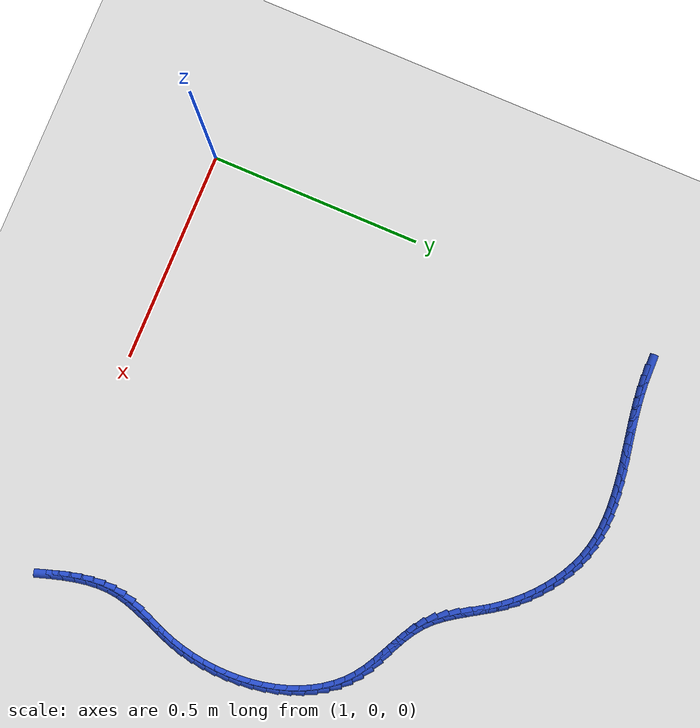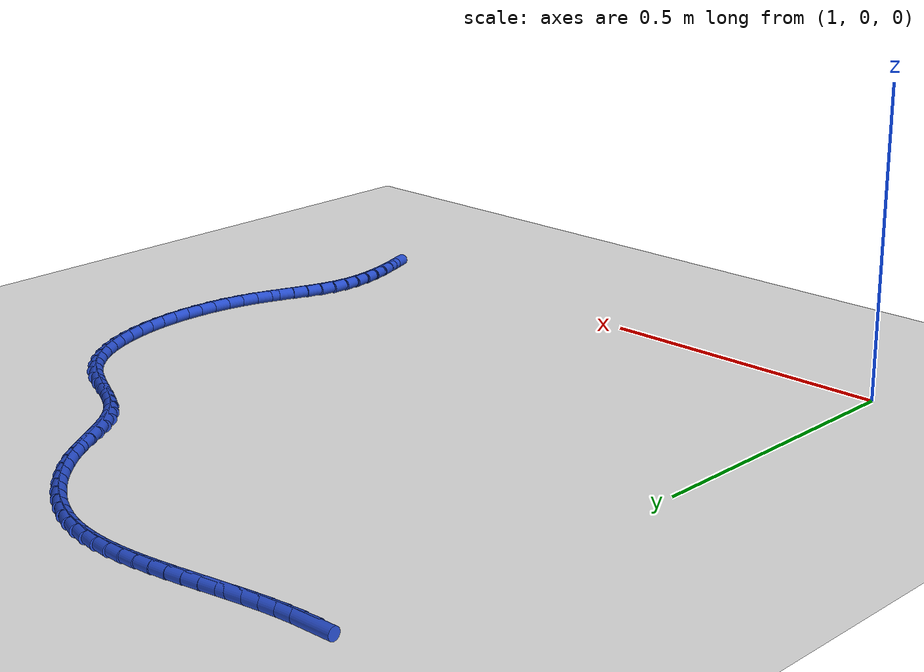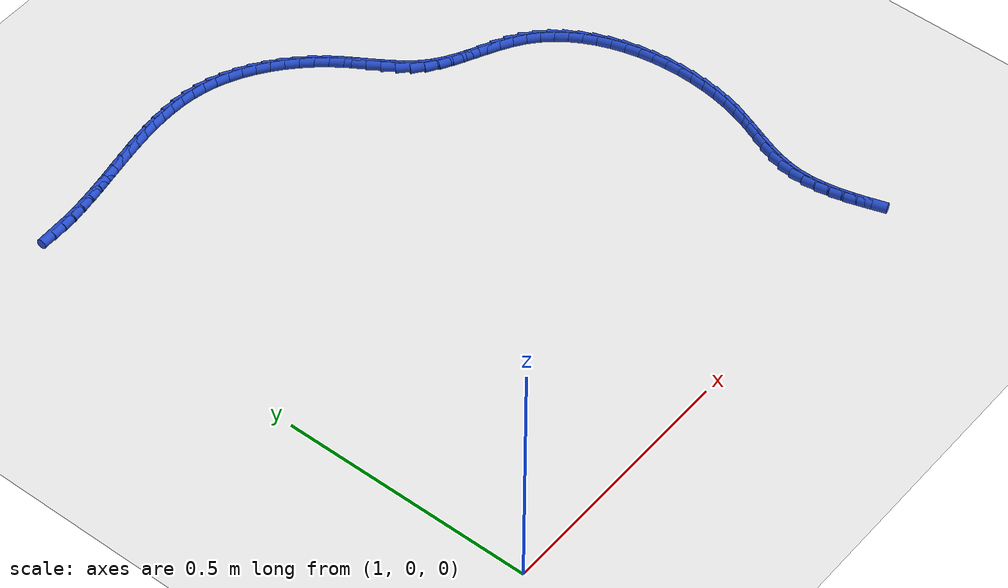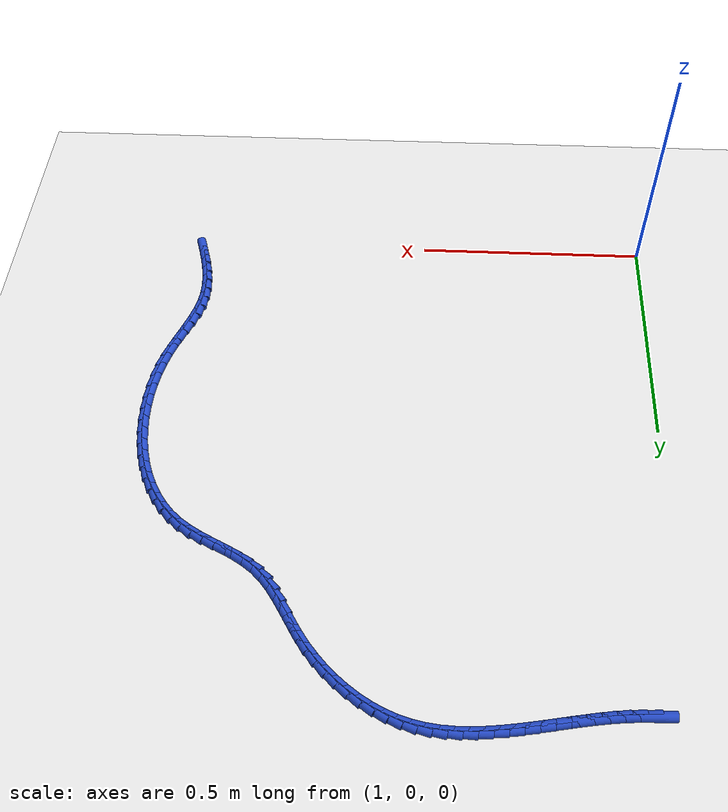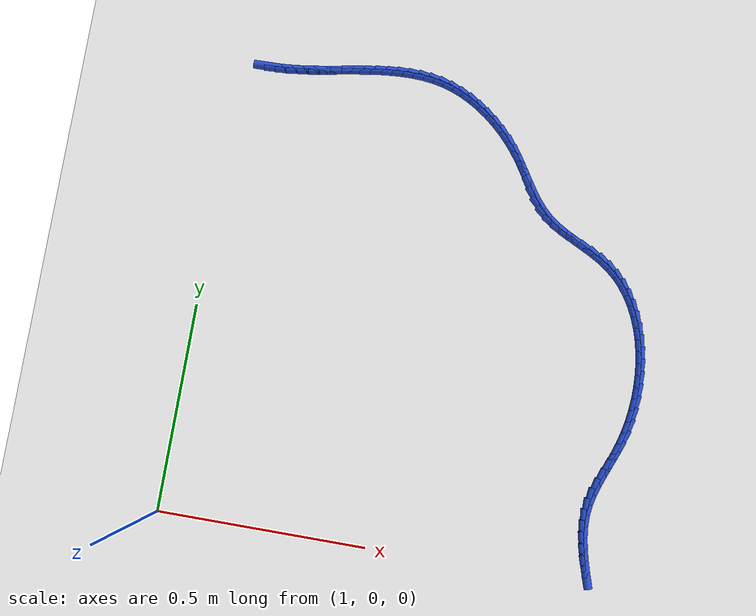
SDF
<sdf version="1.6">
 <world name="default">
  <model name="ground_plane">
   <static>1</static>
   <link name="link">
    <collision name="collision">
     <geometry><plane><normal>0 0 1</normal><size>100 100</size></plane></geometry>
     <surface><friction><ode><mu>100</mu><mu2>50</mu2></ode></friction></surface>
    </collision>
    <visual name="visual">
     <cast_shadows>0</cast_shadows>
     <geometry><plane><normal>0 0 1</normal><size>100 100</size></plane></geometry>
     <material>
      <script><uri>file://media/materials/scripts/gazebo.material</uri><name>Gazebo/WhiteGlow</name></script>
     </material>
    </visual>
   </link>
  </model>
  <model name="line">
   <link name="link_69">
    <pose>1.0704714405237863 1.1025574847790947 0.01 0 1.57 0.026596696570581793</pose>
    <collision name="collision">
     <geometry><cylinder><radius>0.01</radius><length>0.08</length></cylinder></geometry>
    </collision>
    <visual name="visual">
     <material>
      <script><name>Gazebo/Blue</name><uri>file://media/materials/scripts/gazebo.material</uri></script>
     </material>
     <geometry><cylinder><radius>0.01</radius><length>0.08</length></cylinder></geometry>
    </visual>
   </link>
   <link name="link_70">
    <pose>1.0965885917270375 1.1032522785613925 0.01 0 1.57 0.07290799182768395</pose>
    <collision name="collision">
     <geometry><cylinder><radius>0.01</radius><length>0.08</length></cylinder></geometry>
    </collision>
    <visual name="visual">
     <material>
      <script><name>Gazebo/Blue</name><uri>file://media/materials/scripts/gazebo.material</uri></script>
     </material>
     <geometry><cylinder><radius>0.01</radius><length>0.08</length></cylinder></geometry>
    </visual>
   </link>
   <link name="link_71">
    <pose>1.1229318638950734 1.1051763239781274 0.01 0 1.57 0.11167765067724277</pose>
    <collision name="collision">
     <geometry><cylinder><radius>0.01</radius><length>0.08</length></cylinder></geometry>
    </collision>
    <visual name="visual">
     <material>
      <script><name>Gazebo/Blue</name><uri>file://media/materials/scripts/gazebo.material</uri></script>
     </material>
     <geometry><cylinder><radius>0.01</radius><length>0.08</length></cylinder></geometry>
    </visual>
   </link>
   <link name="link_72">
    <pose>1.1494803990061393 1.1081535896962393 0.01 0 1.57 0.14099805214555697</pose>
    <collision name="collision">
     <geometry><cylinder><radius>0.01</radius><length>0.08</length></cylinder></geometry>
    </collision>
    <visual name="visual">
     <material>
      <script><name>Gazebo/Blue</name><uri>file://media/materials/scripts/gazebo.material</uri></script>
     </material>
     <geometry><cylinder><radius>0.01</radius><length>0.08</length></cylinder></geometry>
    </visual>
   </link>
   <link name="link_73">
    <pose>1.176190200335139 1.1119447765186792 0.01 0 1.57 0.1613246762072731</pose>
    <collision name="collision">
     <geometry><cylinder><radius>0.01</radius><length>0.08</length></cylinder></geometry>
    </collision>
    <visual name="visual">
     <material>
      <script><name>Gazebo/Blue</name><uri>file://media/materials/scripts/gazebo.material</uri></script>
     </material>
     <geometry><cylinder><radius>0.01</radius><length>0.08</length></cylinder></geometry>
    </visual>
   </link>
   <link name="link_74">
    <pose>1.2030172711567653 1.1163105852478228 0.01 0 1.57 0.1730137766827658</pose>
    <collision name="collision">
     <geometry><cylinder><radius>0.01</radius><length>0.08</length></cylinder></geometry>
    </collision>
    <visual name="visual">
     <material>
      <script><name>Gazebo/Blue</name><uri>file://media/materials/scripts/gazebo.material</uri></script>
     </material>
     <geometry><cylinder><radius>0.01</radius><length>0.08</length></cylinder></geometry>
    </visual>
   </link>
   <link name="link_75">
    <pose>1.2299176147457112 1.121011716686046 0.01 0 1.57 0.17628757949826826</pose>
    <collision name="collision">
     <geometry><cylinder><radius>0.01</radius><length>0.08</length></cylinder></geometry>
    </collision>
    <visual name="visual">
     <material>
      <script><name>Gazebo/Blue</name><uri>file://media/materials/scripts/gazebo.material</uri></script>
     </material>
     <geometry><cylinder><radius>0.01</radius><length>0.08</length></cylinder></geometry>
    </visual>
   </link>
   <link name="link_76">
    <pose>1.25684723437667 1.1258088716357249 0.01 0 1.57 0.17121792255488602</pose>
    <collision name="collision">
     <geometry><cylinder><radius>0.01</radius><length>0.08</length></cylinder></geometry>
    </collision>
    <visual name="visual">
     <material>
      <script><name>Gazebo/Blue</name><uri>file://media/materials/scripts/gazebo.material</uri></script>
     </material>
     <geometry><cylinder><radius>0.01</radius><length>0.08</length></cylinder></geometry>
    </visual>
   </link>
   <link name="link_77">
    <pose>1.2837621333243348 1.1304627508992353 0.01 0 1.57 0.15772261726100056</pose>
    <collision name="collision">
     <geometry><cylinder><radius>0.01</radius><length>0.08</length></cylinder></geometry>
    </collision>
    <visual name="visual">
     <material>
      <script><name>Gazebo/Blue</name><uri>file://media/materials/scripts/gazebo.material</uri></script>
     </material>
     <geometry><cylinder><radius>0.01</radius><length>0.08</length></cylinder></geometry>
    </visual>
   </link>
   <link name="link_78">
    <pose>1.3106183148633992 1.1347340552789538 0.01 0 1.57 0.1355728570010186</pose>
    <collision name="collision">
     <geometry><cylinder><radius>0.01</radius><length>0.08</length></cylinder></geometry>
    </collision>
    <visual name="visual">
     <material>
      <script><name>Gazebo/Blue</name><uri>file://media/materials/scripts/gazebo.material</uri></script>
     </material>
     <geometry><cylinder><radius>0.01</radius><length>0.08</length></cylinder></geometry>
    </visual>
   </link>
   <link name="link_79">
    <pose>1.3373717822685558 1.138383485577255 0.01 0 1.57 0.10441396192374401</pose>
    <collision name="collision">
     <geometry><cylinder><radius>0.01</radius><length>0.08</length></cylinder></geometry>
    </collision>
    <visual name="visual">
     <material>
      <script><name>Gazebo/Blue</name><uri>file://media/materials/scripts/gazebo.material</uri></script>
     </material>
     <geometry><cylinder><radius>0.01</radius><length>0.08</length></cylinder></geometry>
    </visual>
   </link>
   <link name="link_80">
    <pose>1.3639785388144978 1.141171742596516 0.01 0 1.57 0.06380566253823139</pose>
    <collision name="collision">
     <geometry><cylinder><radius>0.01</radius><length>0.08</length></cylinder></geometry>
    </collision>
    <visual name="visual">
     <material>
      <script><name>Gazebo/Blue</name><uri>file://media/materials/scripts/gazebo.material</uri></script>
     </material>
     <geometry><cylinder><radius>0.01</radius><length>0.08</length></cylinder></geometry>
    </visual>
   </link>
   <link name="link_81">
    <pose>1.390394587775919 1.1428595271391129 0.01 0 1.57 0.013291615788327276</pose>
    <collision name="collision">
     <geometry><cylinder><radius>0.01</radius><length>0.08</length></cylinder></geometry>
    </collision>
    <visual name="visual">
     <material>
      <script><name>Gazebo/Blue</name><uri>file://media/materials/scripts/gazebo.material</uri></script>
     </material>
     <geometry><cylinder><radius>0.01</radius><length>0.08</length></cylinder></geometry>
    </visual>
   </link>
   <link name="link_82">
    <pose>1.4165759324275122 1.1432075400074206 0.01 0 1.57 -0.04749061101281592</pose>
    <collision name="collision">
     <geometry><cylinder><radius>0.01</radius><length>0.08</length></cylinder></geometry>
    </collision>
    <visual name="visual">
     <material>
      <script><name>Gazebo/Blue</name><uri>file://media/materials/scripts/gazebo.material</uri></script>
     </material>
     <geometry><cylinder><radius>0.01</radius><length>0.08</length></cylinder></geometry>
    </visual>
   </link>
   <link name="link_83">
    <pose>1.4424785760439702 1.141976482003816 0.01 0 1.57 -0.11865171485119448</pose>
    <collision name="collision">
     <geometry><cylinder><radius>0.01</radius><length>0.08</length></cylinder></geometry>
    </collision>
    <visual name="visual">
     <material>
      <script><name>Gazebo/Blue</name><uri>file://media/materials/scripts/gazebo.material</uri></script>
     </material>
     <geometry><cylinder><radius>0.01</radius><length>0.08</length></cylinder></geometry>
    </visual>
   </link>
   <link name="link_84">
    <pose>1.4680585218999873 1.1389270539306748 0.01 0 1.57 -0.19985211579475454</pose>
    <collision name="collision">
     <geometry><cylinder><radius>0.01</radius><length>0.08</length></cylinder></geometry>
    </collision>
    <visual name="visual">
     <material>
      <script><name>Gazebo/Blue</name><uri>file://media/materials/scripts/gazebo.material</uri></script>
     </material>
     <geometry><cylinder><radius>0.01</radius><length>0.08</length></cylinder></geometry>
    </visual>
   </link>
   <link name="link_85">
    <pose>1.4932717732702554 1.1338199565903726 0.01 0 1.57 -0.28938602037651506</pose>
    <collision name="collision">
     <geometry><cylinder><radius>0.01</radius><length>0.08</length></cylinder></geometry>
    </collision>
    <visual name="visual">
     <material>
      <script><name>Gazebo/Blue</name><uri>file://media/materials/scripts/gazebo.material</uri></script>
     </material>
     <geometry><cylinder><radius>0.01</radius><length>0.08</length></cylinder></geometry>
    </visual>
   </link>
   <link name="link_86">
    <pose>1.518070896784296 1.126436160051222 0.01 0 1.57 -0.37803097030983646</pose>
    <collision name="collision">
     <geometry><cylinder><radius>0.01</radius><length>0.08</length></cylinder></geometry>
    </collision>
    <visual name="visual">
     <material>
      <script><name>Gazebo/Blue</name><uri>file://media/materials/scripts/gazebo.material</uri></script>
     </material>
     <geometry><cylinder><radius>0.01</radius><length>0.08</length></cylinder></geometry>
    </visual>
   </link>
   <link name="link_87">
    <pose>1.5423694984689589 1.1167864232532774 0.01 0 1.57 -0.4608028086289674</pose>
    <collision name="collision">
     <geometry><cylinder><radius>0.01</radius><length>0.08</length></cylinder></geometry>
    </collision>
    <visual name="visual">
     <material>
      <script><name>Gazebo/Blue</name><uri>file://media/materials/scripts/gazebo.material</uri></script>
     </material>
     <geometry><cylinder><radius>0.01</radius><length>0.08</length></cylinder></geometry>
    </visual>
   </link>
   <link name="link_88">
    <pose>1.566056510903064 1.1050270286499773 0.01 0 1.57 -0.5382420699485931</pose>
    <collision name="collision">
     <geometry><cylinder><radius>0.01</radius><length>0.08</length></cylinder></geometry>
    </collision>
    <visual name="visual">
     <material>
      <script><name>Gazebo/Blue</name><uri>file://media/materials/scripts/gazebo.material</uri></script>
     </material>
     <geometry><cylinder><radius>0.01</radius><length>0.08</length></cylinder></geometry>
    </visual>
   </link>
   <link name="link_89">
    <pose>1.5890204757265127 1.0913165644448535 0.01 0 1.57 -0.6110996404862703</pose>
    <collision name="collision">
     <geometry><cylinder><radius>0.01</radius><length>0.08</length></cylinder></geometry>
    </collision>
    <visual name="visual">
     <material>
      <script><name>Gazebo/Blue</name><uri>file://media/materials/scripts/gazebo.material</uri></script>
     </material>
     <geometry><cylinder><radius>0.01</radius><length>0.08</length></cylinder></geometry>
    </visual>
   </link>
   <link name="link_90">
    <pose>1.6111499345792069 1.0758136188414356 0.01 0 1.57 -0.6801873495021425</pose>
    <collision name="collision">
     <geometry><cylinder><radius>0.01</radius><length>0.08</length></cylinder></geometry>
    </collision>
    <visual name="visual">
     <material>
      <script><name>Gazebo/Blue</name><uri>file://media/materials/scripts/gazebo.material</uri></script>
     </material>
     <geometry><cylinder><radius>0.01</radius><length>0.08</length></cylinder></geometry>
    </visual>
   </link>
   <link name="link_91">
    <pose>1.632333429101047 1.0586767800432542 0.01 0 1.57 -0.7463370458473898</pose>
    <collision name="collision">
     <geometry><cylinder><radius>0.01</radius><length>0.08</length></cylinder></geometry>
    </collision>
    <visual name="visual">
     <material>
      <script><name>Gazebo/Blue</name><uri>file://media/materials/scripts/gazebo.material</uri></script>
     </material>
     <geometry><cylinder><radius>0.01</radius><length>0.08</length></cylinder></geometry>
    </visual>
   </link>
   <link name="link_92">
    <pose>1.652459500931935 1.0400646362538404 0.01 0 1.57 -0.8103805827578506</pose>
    <collision name="collision">
     <geometry><cylinder><radius>0.01</radius><length>0.08</length></cylinder></geometry>
    </collision>
    <visual name="visual">
     <material>
      <script><name>Gazebo/Blue</name><uri>file://media/materials/scripts/gazebo.material</uri></script>
     </material>
     <geometry><cylinder><radius>0.01</radius><length>0.08</length></cylinder></geometry>
    </visual>
   </link>
   <link name="link_93">
    <pose>1.671416691711772 1.020135775676724 0.01 0 1.57 -0.873144404283494</pose>
    <collision name="collision">
     <geometry><cylinder><radius>0.01</radius><length>0.08</length></cylinder></geometry>
    </collision>
    <visual name="visual">
     <material>
      <script><name>Gazebo/Blue</name><uri>file://media/materials/scripts/gazebo.material</uri></script>
     </material>
     <geometry><cylinder><radius>0.01</radius><length>0.08</length></cylinder></geometry>
    </visual>
   </link>
   <link name="link_94">
    <pose>1.689093543080459 0.9990487865154354 0.01 0 1.57 -0.9352003698618379</pose>
    <collision name="collision">
     <geometry><cylinder><radius>0.01</radius><length>0.08</length></cylinder></geometry>
    </collision>
    <visual name="visual">
     <material>
      <script><name>Gazebo/Blue</name><uri>file://media/materials/scripts/gazebo.material</uri></script>
     </material>
     <geometry><cylinder><radius>0.01</radius><length>0.08</length></cylinder></geometry>
    </visual>
   </link>
   <link name="link_95">
    <pose>1.7053847429106215 0.9769656339019442 0.01 0 1.57 -0.9850654055815493</pose>
    <collision name="collision">
     <geometry><cylinder><radius>0.01</radius><length>0.08</length></cylinder></geometry>
    </collision>
    <visual name="visual">
     <material>
      <script><name>Gazebo/Blue</name><uri>file://media/materials/scripts/gazebo.material</uri></script>
     </material>
     <geometry><cylinder><radius>0.01</radius><length>0.08</length></cylinder></geometry>
    </visual>
   </link>
   <link name="link_96">
    <pose>1.7204802638633794 0.9542105214717824 0.01 0 1.57 -1.0054822549574012</pose>
    <collision name="collision">
     <geometry><cylinder><radius>0.01</radius><length>0.08</length></cylinder></geometry>
    </collision>
    <visual name="visual">
     <material>
      <script><name>Gazebo/Blue</name><uri>file://media/materials/scripts/gazebo.material</uri></script>
     </material>
     <geometry><cylinder><radius>0.01</radius><length>0.08</length></cylinder></geometry>
    </visual>
   </link>
   <link name="link_97">
    <pose>1.7349898776421495 0.9313383033073508 0.01 0 1.57 -0.9945927409335762</pose>
    <collision name="collision">
     <geometry><cylinder><radius>0.01</radius><length>0.08</length></cylinder></geometry>
    </collision>
    <visual name="visual">
     <material>
      <script><name>Gazebo/Blue</name><uri>file://media/materials/scripts/gazebo.material</uri></script>
     </material>
     <geometry><cylinder><radius>0.01</radius><length>0.08</length></cylinder></geometry>
    </visual>
   </link>
   <link name="link_98">
    <pose>1.7495553754299802 0.9089214259735034 0.01 0 1.57 -0.9510035699582321</pose>
    <collision name="collision">
     <geometry><cylinder><radius>0.01</radius><length>0.08</length></cylinder></geometry>
    </collision>
    <visual name="visual">
     <material>
      <script><name>Gazebo/Blue</name><uri>file://media/materials/scripts/gazebo.material</uri></script>
     </material>
     <geometry><cylinder><radius>0.01</radius><length>0.08</length></cylinder></geometry>
    </visual>
   </link>
   <link name="link_99">
    <pose>1.764818548409918 0.8875323360350936 0.01 0 1.57 -0.8727293469195275</pose>
    <collision name="collision">
     <geometry><cylinder><radius>0.01</radius><length>0.08</length></cylinder></geometry>
    </collision>
    <visual name="visual">
     <material>
      <script><name>Gazebo/Blue</name><uri>file://media/materials/scripts/gazebo.material</uri></script>
     </material>
     <geometry><cylinder><radius>0.01</radius><length>0.08</length></cylinder></geometry>
    </visual>
   </link>
   <link name="link_100">
    <pose>1.781421187765012 0.8677434800569754 0.01 0 1.57 -0.7587547481188723</pose>
    <collision name="collision">
     <geometry><cylinder><radius>0.01</radius><length>0.08</length></cylinder></geometry>
    </collision>
    <visual name="visual">
     <material>
      <script><name>Gazebo/Blue</name><uri>file://media/materials/scripts/gazebo.material</uri></script>
     </material>
     <geometry><cylinder><radius>0.01</radius><length>0.08</length></cylinder></geometry>
    </visual>
   </link>
   <link name="link_101">
    <pose>1.8000035830661973 0.8501258065102075 0.01 0 1.57 -0.6308516036627004</pose>
    <collision name="collision">
     <geometry><cylinder><radius>0.01</radius><length>0.08</length></cylinder></geometry>
    </collision>
    <visual name="visual">
     <material>
      <script><name>Gazebo/Blue</name><uri>file://media/materials/scripts/gazebo.material</uri></script>
     </material>
     <geometry><cylinder><radius>0.01</radius><length>0.08</length></cylinder></geometry>
    </visual>
   </link>
   <link name="link_102">
    <pose>1.8208523698894434 0.8348974384916317 0.01 0 1.57 -0.5361579658690663</pose>
    <collision name="collision">
     <geometry><cylinder><radius>0.01</radius><length>0.08</length></cylinder></geometry>
    </collision>
    <visual name="visual">
     <material>
      <script><name>Gazebo/Blue</name><uri>file://media/materials/scripts/gazebo.material</uri></script>
     </material>
     <geometry><cylinder><radius>0.01</radius><length>0.08</length></cylinder></geometry>
    </visual>
   </link>
   <link name="link_103">
    <pose>1.8434470452888279 0.8214712517232908 0.01 0 1.57 -0.47934606759461806</pose>
    <collision name="collision">
     <geometry><cylinder><radius>0.01</radius><length>0.08</length></cylinder></geometry>
    </collision>
    <visual name="visual">
     <material>
      <script><name>Gazebo/Blue</name><uri>file://media/materials/scripts/gazebo.material</uri></script>
     </material>
     <geometry><cylinder><radius>0.01</radius><length>0.08</length></cylinder></geometry>
    </visual>
   </link>
   <link name="link_104">
    <pose>1.8671550354549107 0.809148313648739 0.01 0 1.57 -0.4578183205416514</pose>
    <collision name="collision">
     <geometry><cylinder><radius>0.01</radius><length>0.08</length></cylinder></geometry>
    </collision>
    <visual name="visual">
     <material>
      <script><name>Gazebo/Blue</name><uri>file://media/materials/scripts/gazebo.material</uri></script>
     </material>
     <geometry><cylinder><radius>0.01</radius><length>0.08</length></cylinder></geometry>
    </visual>
   </link>
   <link name="link_105">
    <pose>1.8913437665782538 0.7972296917115295 0.01 0 1.57 -0.47010957913336054</pose>
    <collision name="collision">
     <geometry><cylinder><radius>0.01</radius><length>0.08</length></cylinder></geometry>
    </collision>
    <visual name="visual">
     <material>
      <script><name>Gazebo/Blue</name><uri>file://media/materials/scripts/gazebo.material</uri></script>
     </material>
     <geometry><cylinder><radius>0.01</radius><length>0.08</length></cylinder></geometry>
    </visual>
   </link>
   <link name="link_106">
    <pose>1.9153806648494196 0.7850164533552164 0.01 0 1.57 -0.5165372647500508</pose>
    <collision name="collision">
     <geometry><cylinder><radius>0.01</radius><length>0.08</length></cylinder></geometry>
    </collision>
    <visual name="visual">
     <material>
      <script><name>Gazebo/Blue</name><uri>file://media/materials/scripts/gazebo.material</uri></script>
     </material>
     <geometry><cylinder><radius>0.01</radius><length>0.08</length></cylinder></geometry>
    </visual>
   </link>
   <link name="link_107">
    <pose>1.938633156458969 0.7718096660233533 0.01 0 1.57 -0.5987754774995064</pose>
    <collision name="collision">
     <geometry><cylinder><radius>0.01</radius><length>0.08</length></cylinder></geometry>
    </collision>
    <visual name="visual">
     <material>
      <script><name>Gazebo/Blue</name><uri>file://media/materials/scripts/gazebo.material</uri></script>
     </material>
     <geometry><cylinder><radius>0.01</radius><length>0.08</length></cylinder></geometry>
    </visual>
   </link>
   <link name="link_108">
    <pose>1.9604686732972922 0.7569104050468994 0.01 0 1.57 -0.7102790318949341</pose>
    <collision name="collision">
     <geometry><cylinder><radius>0.01</radius><length>0.08</length></cylinder></geometry>
    </collision>
    <visual name="visual">
     <material>
      <script><name>Gazebo/Blue</name><uri>file://media/materials/scripts/gazebo.material</uri></script>
     </material>
     <geometry><cylinder><radius>0.01</radius><length>0.08</length></cylinder></geometry>
    </visual>
   </link>
   <link name="link_109">
    <pose>1.980376959472362 0.7397890010294671 0.01 0 1.57 -0.8219515705128159</pose>
    <collision name="collision">
     <geometry><cylinder><radius>0.01</radius><length>0.08</length></cylinder></geometry>
    </collision>
    <visual name="visual">
     <material>
      <script><name>Gazebo/Blue</name><uri>file://media/materials/scripts/gazebo.material</uri></script>
     </material>
     <geometry><cylinder><radius>0.01</radius><length>0.08</length></cylinder></geometry>
    </visual>
   </link>
   <link name="link_110">
    <pose>1.9982852535276134 0.7205211880365888 0.01 0 1.57 -0.9263622412356523</pose>
    <collision name="collision">
     <geometry><cylinder><radius>0.01</radius><length>0.08</length></cylinder></geometry>
    </collision>
    <visual name="visual">
     <material>
      <script><name>Gazebo/Blue</name><uri>file://media/materials/scripts/gazebo.material</uri></script>
     </material>
     <geometry><cylinder><radius>0.01</radius><length>0.08</length></cylinder></geometry>
    </visual>
   </link>
   <link name="link_111">
    <pose>2.0142185719688186 0.6993180049790678 0.01 0 1.57 -1.023133380440406</pose>
    <collision name="collision">
     <geometry><cylinder><radius>0.01</radius><length>0.08</length></cylinder></geometry>
    </collision>
    <visual name="visual">
     <material>
      <script><name>Gazebo/Blue</name><uri>file://media/materials/scripts/gazebo.material</uri></script>
     </material>
     <geometry><cylinder><radius>0.01</radius><length>0.08</length></cylinder></geometry>
    </visual>
   </link>
   <link name="link_112">
    <pose>2.0282019313017496 0.6763904907677065 0.01 0 1.57 -1.1124649269165703</pose>
    <collision name="collision">
     <geometry><cylinder><radius>0.01</radius><length>0.08</length></cylinder></geometry>
    </collision>
    <visual name="visual">
     <material>
      <script><name>Gazebo/Blue</name><uri>file://media/materials/scripts/gazebo.material</uri></script>
     </material>
     <geometry><cylinder><radius>0.01</radius><length>0.08</length></cylinder></geometry>
    </visual>
   </link>
   <link name="link_113">
    <pose>2.040260348032175 0.6519496843133076 0.01 0 1.57 -1.1949443869273952</pose>
    <collision name="collision">
     <geometry><cylinder><radius>0.01</radius><length>0.08</length></cylinder></geometry>
    </collision>
    <visual name="visual">
     <material>
      <script><name>Gazebo/Blue</name><uri>file://media/materials/scripts/gazebo.material</uri></script>
     </material>
     <geometry><cylinder><radius>0.01</radius><length>0.08</length></cylinder></geometry>
    </visual>
   </link>
   <link name="link_114">
    <pose>2.0504188386658675 0.6262066245266732 0.01 0 1.57 -1.271382539123593</pose>
    <collision name="collision">
     <geometry><cylinder><radius>0.01</radius><length>0.08</length></cylinder></geometry>
    </collision>
    <visual name="visual">
     <material>
      <script><name>Gazebo/Blue</name><uri>file://media/materials/scripts/gazebo.material</uri></script>
     </material>
     <geometry><cylinder><radius>0.01</radius><length>0.08</length></cylinder></geometry>
    </visual>
   </link>
   <link name="link_115">
    <pose>2.058702419708598 0.5993723503186061 0.01 0 1.57 -1.342694505975691</pose>
    <collision name="collision">
     <geometry><cylinder><radius>0.01</radius><length>0.08</length></cylinder></geometry>
    </collision>
    <visual name="visual">
     <material>
      <script><name>Gazebo/Blue</name><uri>file://media/materials/scripts/gazebo.material</uri></script>
     </material>
     <geometry><cylinder><radius>0.01</radius><length>0.08</length></cylinder></geometry>
    </visual>
   </link>
   <link name="link_116">
    <pose>2.0651361076661376 0.5716579005999092 0.01 0 1.57 -1.4098252974457666</pose>
    <collision name="collision">
     <geometry><cylinder><radius>0.01</radius><length>0.08</length></cylinder></geometry>
    </collision>
    <visual name="visual">
     <material>
      <script><name>Gazebo/Blue</name><uri>file://media/materials/scripts/gazebo.material</uri></script>
     </material>
     <geometry><cylinder><radius>0.01</radius><length>0.08</length></cylinder></geometry>
    </visual>
   </link>
   <link name="link_117">
    <pose>2.069744919044257 0.5432743142813848 0.01 0 1.57 -1.473710444486193</pose>
    <collision name="collision">
     <geometry><cylinder><radius>0.01</radius><length>0.08</length></cylinder></geometry>
    </collision>
    <visual name="visual">
     <material>
      <script><name>Gazebo/Blue</name><uri>file://media/materials/scripts/gazebo.material</uri></script>
     </material>
     <geometry><cylinder><radius>0.01</radius><length>0.08</length></cylinder></geometry>
    </visual>
   </link>
   <link name="link_118">
    <pose>2.072553870348728 0.5144326302738356 0.01 0 1.57 -1.5352611908903726</pose>
    <collision name="collision">
     <geometry><cylinder><radius>0.01</radius><length>0.08</length></cylinder></geometry>
    </collision>
    <visual name="visual">
     <material>
      <script><name>Gazebo/Blue</name><uri>file://media/materials/scripts/gazebo.material</uri></script>
     </material>
     <geometry><cylinder><radius>0.01</radius><length>0.08</length></cylinder></geometry>
    </visual>
   </link>
   <link name="link_119">
    <pose>2.0735879780853215 0.4853438874880642 0.01 0 1.57 1.5462270173948387</pose>
    <collision name="collision">
     <geometry><cylinder><radius>0.01</radius><length>0.08</length></cylinder></geometry>
    </collision>
    <visual name="visual">
     <material>
      <script><name>Gazebo/Blue</name><uri>file://media/materials/scripts/gazebo.material</uri></script>
     </material>
     <geometry><cylinder><radius>0.01</radius><length>0.08</length></cylinder></geometry>
    </visual>
   </link>
   <link name="link_120">
    <pose>2.072872258759809 0.4562191248348732 0.01 0 1.57 1.4866928912732578</pose>
    <collision name="collision">
     <geometry><cylinder><radius>0.01</radius><length>0.08</length></cylinder></geometry>
    </collision>
    <visual name="visual">
     <material>
      <script><name>Gazebo/Blue</name><uri>file://media/materials/scripts/gazebo.material</uri></script>
     </material>
     <geometry><cylinder><radius>0.01</radius><length>0.08</length></cylinder></geometry>
    </visual>
   </link>
   <link name="link_121">
    <pose>2.07043172887796 0.4272693812250651 0.01 0 1.57 1.4268482690303945</pose>
    <collision name="collision">
     <geometry><cylinder><radius>0.01</radius><length>0.08</length></cylinder></geometry>
    </collision>
    <visual name="visual">
     <material>
      <script><name>Gazebo/Blue</name><uri>file://media/materials/scripts/gazebo.material</uri></script>
     </material>
     <geometry><cylinder><radius>0.01</radius><length>0.08</length></cylinder></geometry>
    </visual>
   </link>
   <link name="link_122">
    <pose>2.066291404945548 0.39870569556944274 0.01 0 1.57 1.36578722729528</pose>
    <collision name="collision">
     <geometry><cylinder><radius>0.01</radius><length>0.08</length></cylinder></geometry>
    </collision>
    <visual name="visual">
     <material>
      <script><name>Gazebo/Blue</name><uri>file://media/materials/scripts/gazebo.material</uri></script>
     </material>
     <geometry><cylinder><radius>0.01</radius><length>0.08</length></cylinder></geometry>
    </visual>
   </link>
   <link name="link_123">
    <pose>2.0604763034683424 0.370739106778809 0.01 0 1.57 1.302573180668651</pose>
    <collision name="collision">
     <geometry><cylinder><radius>0.01</radius><length>0.08</length></cylinder></geometry>
    </collision>
    <visual name="visual">
     <material>
      <script><name>Gazebo/Blue</name><uri>file://media/materials/scripts/gazebo.material</uri></script>
     </material>
     <geometry><cylinder><radius>0.01</radius><length>0.08</length></cylinder></geometry>
    </visual>
   </link>
   <link name="link_124">
    <pose>2.053011840148864 0.34358040697551717 0.01 0 1.57 1.2434683947215297</pose>
    <collision name="collision">
     <geometry><cylinder><radius>0.01</radius><length>0.08</length></cylinder></geometry>
    </collision>
    <visual name="visual">
     <material>
      <script><name>Gazebo/Blue</name><uri>file://media/materials/scripts/gazebo.material</uri></script>
     </material>
     <geometry><cylinder><radius>0.01</radius><length>0.08</length></cylinder></geometry>
    </visual>
   </link>
   <link name="link_125">
    <pose>2.0440992906148416 0.317331669465705 0.01 0 1.57 1.207225942868543</pose>
    <collision name="collision">
     <geometry><cylinder><radius>0.01</radius><length>0.08</length></cylinder></geometry>
    </collision>
    <visual name="visual">
     <material>
      <script><name>Gazebo/Blue</name><uri>file://media/materials/scripts/gazebo.material</uri></script>
     </material>
     <geometry><cylinder><radius>0.01</radius><length>0.08</length></cylinder></geometry>
    </visual>
   </link>
   <link name="link_126">
    <pose>2.03439101115423 0.2918161038215425 0.01 0 1.57 1.1979316377128968</pose>
    <collision name="collision">
     <geometry><cylinder><radius>0.01</radius><length>0.08</length></cylinder></geometry>
    </collision>
    <visual name="visual">
     <material>
      <script><name>Gazebo/Blue</name><uri>file://media/materials/scripts/gazebo.material</uri></script>
     </material>
     <geometry><cylinder><radius>0.01</radius><length>0.08</length></cylinder></geometry>
    </visual>
   </link>
   <link name="link_127">
    <pose>2.0246106699302597 0.2668128337175566 0.01 0 1.57 1.2169379553170792</pose>
    <collision name="collision">
     <geometry><cylinder><radius>0.01</radius><length>0.08</length></cylinder></geometry>
    </collision>
    <visual name="visual">
     <material>
      <script><name>Gazebo/Blue</name><uri>file://media/materials/scripts/gazebo.material</uri></script>
     </material>
     <geometry><cylinder><radius>0.01</radius><length>0.08</length></cylinder></geometry>
    </visual>
   </link>
   <link name="link_128">
    <pose>2.0154819351061612 0.24210098282827447 0.01 0 1.57 1.2659512557563184</pose>
    <collision name="collision">
     <geometry><cylinder><radius>0.01</radius><length>0.08</length></cylinder></geometry>
    </collision>
    <visual name="visual">
     <material>
      <script><name>Gazebo/Blue</name><uri>file://media/materials/scripts/gazebo.material</uri></script>
     </material>
     <geometry><cylinder><radius>0.01</radius><length>0.08</length></cylinder></geometry>
    </visual>
   </link>
   <link name="link_129">
    <pose>2.0077284748451656 0.21745967482822334 0.01 0 1.57 1.3465507049385157</pose>
    <collision name="collision">
     <geometry><cylinder><radius>0.01</radius><length>0.08</length></cylinder></geometry>
    </collision>
    <visual name="visual">
     <material>
      <script><name>Gazebo/Blue</name><uri>file://media/materials/scripts/gazebo.material</uri></script>
     </material>
     <geometry><cylinder><radius>0.01</radius><length>0.08</length></cylinder></geometry>
    </visual>
   </link>
   <link name="link_130">
    <pose>2.0020739573105035 0.19266803339193034 0.01 0 1.57 1.45717375832526</pose>
    <collision name="collision">
     <geometry><cylinder><radius>0.01</radius><length>0.08</length></cylinder></geometry>
    </collision>
    <visual name="visual">
     <material>
      <script><name>Gazebo/Blue</name><uri>file://media/materials/scripts/gazebo.material</uri></script>
     </material>
     <geometry><cylinder><radius>0.01</radius><length>0.08</length></cylinder></geometry>
    </visual>
   </link>
   <link name="link_131">
    <pose>1.9992036282306835 0.16751487581879632 0.01 0 1.57 -1.5706540771499826</pose>
    <collision name="collision">
     <geometry><cylinder><radius>0.01</radius><length>0.08</length></cylinder></geometry>
    </collision>
    <visual name="visual">
     <material>
      <script><name>Gazebo/Blue</name><uri>file://media/materials/scripts/gazebo.material</uri></script>
     </material>
     <geometry><cylinder><radius>0.01</radius><length>0.08</length></cylinder></geometry>
    </visual>
   </link>
   <link name="link_132">
    <pose>1.999207266354368 0.14193925021918266 0.01 0 1.57 -1.474786277409067</pose>
    <collision name="collision">
     <geometry><cylinder><radius>0.01</radius><length>0.08</length></cylinder></geometry>
    </collision>
    <visual name="visual">
     <material>
      <script><name>Gazebo/Blue</name><uri>file://media/materials/scripts/gazebo.material</uri></script>
     </material>
     <geometry><cylinder><radius>0.01</radius><length>0.08</length></cylinder></geometry>
    </visual>
   </link>
   <link name="link_133">
    <pose>2.001705513911403 0.11599856350764717 0.01 0 1.57 -1.3972587829927592</pose>
    <collision name="collision">
     <geometry><cylinder><radius>0.01</radius><length>0.08</length></cylinder></geometry>
    </collision>
    <visual name="visual">
     <material>
      <script><name>Gazebo/Blue</name><uri>file://media/materials/scripts/gazebo.material</uri></script>
     </material>
     <geometry><cylinder><radius>0.01</radius><length>0.08</length></cylinder></geometry>
    </visual>
   </link>
   <link name="link_134">
    <pose>2.0063063079899077 0.08975342798848278 0.01 0 1.57 -1.3368966854693107</pose>
    <collision name="collision">
     <geometry><cylinder><radius>0.01</radius><length>0.08</length></cylinder></geometry>
    </collision>
    <visual name="visual">
     <material>
      <script><name>Gazebo/Blue</name><uri>file://media/materials/scripts/gazebo.material</uri></script>
     </material>
     <geometry><cylinder><radius>0.01</radius><length>0.08</length></cylinder></geometry>
    </visual>
   </link>
   <link name="link_135">
    <pose>2.0126175856780057 0.06326445596598142 0.01 0 1.57 -1.2921822750598893</pose>
    <collision name="collision">
     <geometry><cylinder><radius>0.01</radius><length>0.08</length></cylinder></geometry>
    </collision>
    <visual name="visual">
     <material>
      <script><name>Gazebo/Blue</name><uri>file://media/materials/scripts/gazebo.material</uri></script>
     </material>
     <geometry><cylinder><radius>0.01</radius><length>0.08</length></cylinder></geometry>
    </visual>
   </link>
   <link name="link_136">
    <pose>2.0202472840638155 0.03659225974443562 0.01 0 1.57 -1.2617124382379408</pose>
    <collision name="collision">
     <geometry><cylinder><radius>0.01</radius><length>0.08</length></cylinder></geometry>
    </collision>
    <visual name="visual">
     <material>
      <script><name>Gazebo/Blue</name><uri>file://media/materials/scripts/gazebo.material</uri></script>
     </material>
     <geometry><cylinder><radius>0.01</radius><length>0.08</length></cylinder></geometry>
    </visual>
   </link>
  </model>
 </world>
</sdf>
